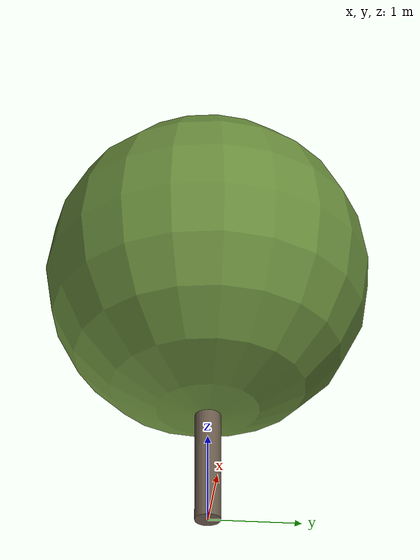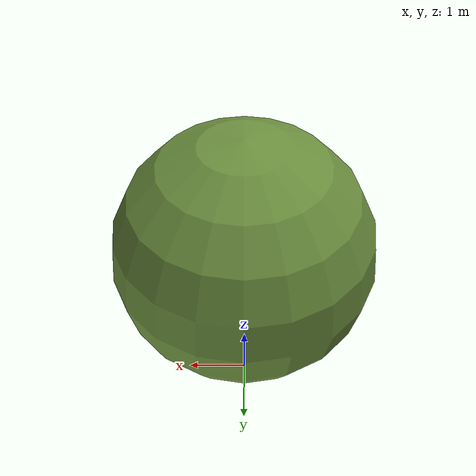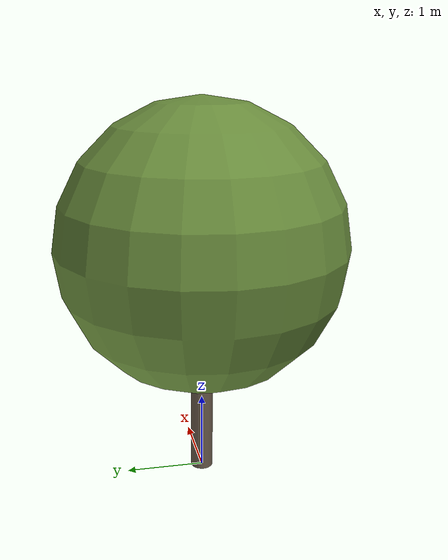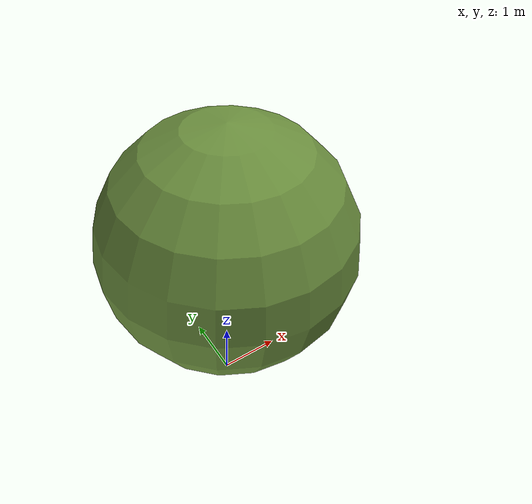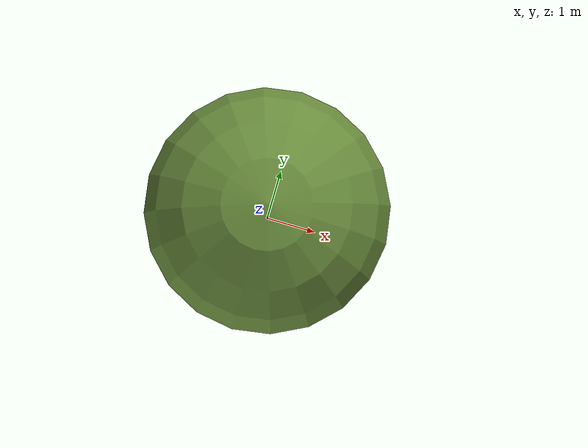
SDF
<?xml version="1.0" ?>
<sdf version="1.10">
  <model name="olivier_provence_00">
    <static>true</static>

    <!-- Tronc -->
    <link name="trunk">
      <pose>0 0 1.2589040006623406 0 0 0</pose>
      <visual name="trunk_visual">
        <geometry>
          <cylinder>
            <radius>0.1430211971196162</radius>
            <length>2.5178080013246813</length>
          </cylinder>
        </geometry>
        <material>
          <ambient>0.42 0.36 0.30 1</ambient>
          <diffuse>0.42 0.36 0.30 1</diffuse>
          <specular>0.1 0.1 0.1 1</specular>
        </material>
      </visual>
      <collision name="trunk_collision">
        <geometry>
          <cylinder>
            <radius>0.1430211971196162</radius>
            <length>2.5178080013246813</length>
          </cylinder>
        </geometry>
      </collision>
    </link>

    <!-- Feuillage -->
    <link name="crown">
      <pose>0 0 3.069568890856079 0 0 0</pose>
      <visual name="crown_visual">
        <geometry>
          <sphere>
              <radius>1.839202965104659</radius>
            </sphere>
        </geometry>
        <material>
          <ambient>0.42 0.56 0.24 1</ambient>
          <diffuse>0.42 0.56 0.24 1</diffuse>
          <specular>0.1 0.1 0.1 1</specular>
        </material>
      </visual>
      <collision name="crown_collision">
        <geometry>
          <sphere>
            <radius>1.4713623720837274</radius>
          </sphere>
        </geometry>
      </collision>
    </link>

    <!-- Joint tronc-feuillage -->
    <joint name="trunk_crown_joint" type="fixed">
      <parent>trunk</parent>
      <child>crown</child>
    </joint>

  </model>
</sdf>
